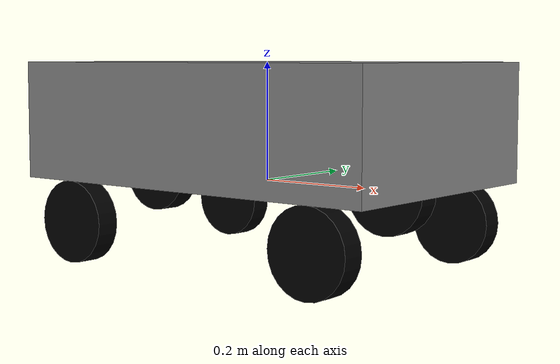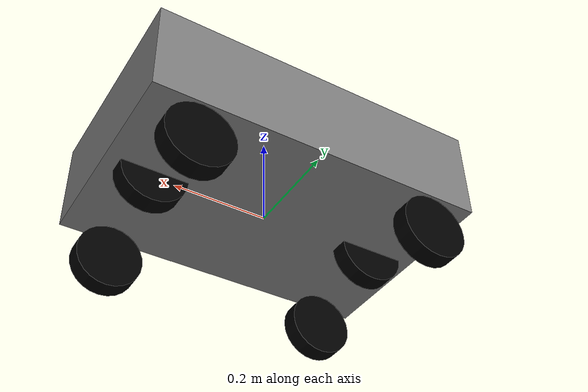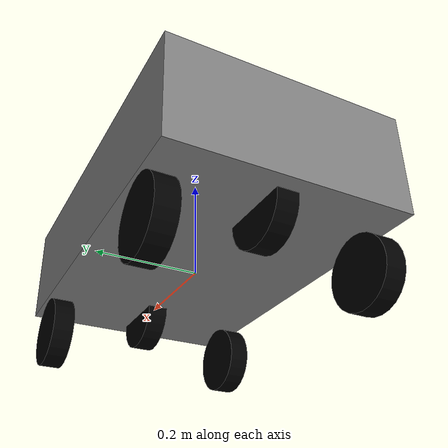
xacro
<?xml version="1.0"?>
<robot name="six_wheel_rover" xmlns:xacro="http://www.ros.org/wiki/xacro">

  <!-- ==================== GLOBAL PROPERTIES ===================== -->
  <xacro:property name="wheel_radius" value="0.07" />       <!-- 7 cm -->
  <xacro:property name="wheel_width"  value="0.04" />
  <xacro:property name="track_width"  value="0.40" />
  <xacro:property name="wheelbase"    value="0.50" />
  <xacro:property name="body_length"  value="0.70" />
  <xacro:property name="body_width"   value="0.45" />
  <xacro:property name="body_height"  value="0.20" />

  <!-- ==================== BASE LINK ===================== -->
  <link name="base_link">
    <visual>
      <geometry>
        <box size="${body_length} ${body_width} ${body_height}"/>
      </geometry>
      <origin xyz="0 0 ${body_height/2}" rpy="0 0 0"/>
      <material name="grey"><color rgba="0.5 0.5 0.5 1"/></material>
    </visual>
    <collision>
      <geometry>
        <box size="${body_length} ${body_width} ${body_height}"/>
      </geometry>
    </collision>
  </link>

  <!-- ==================== WHEELS ===================== -->
  <xacro:macro name="wheel" params="name x y">
    <link name="${name}_link">
      <visual>
        <geometry>
          <cylinder radius="${wheel_radius}" length="${wheel_width}"/>
        </geometry>
        <origin xyz="0 0 0" rpy="${pi/2} 0 0"/>
        <material name="black"><color rgba="0 0 0 1"/></material>
      </visual>
      <collision>
        <geometry>
          <cylinder radius="${wheel_radius}" length="${wheel_width}"/>
        </geometry>
      </collision>
    </link>

    <!-- Steering joint for front and rear wheels -->
    <joint name="${name}_steer_joint" type="revolute">
      <parent link="base_link"/>
      <child  link="${name}_steer_link"/>
      <origin xyz="${x} ${y} 0.0" rpy="0 0 0"/>
      <axis xyz="0 0 1"/>
      <limit lower="${-45*pi/180}" upper="${45*pi/180}" effort="30" velocity="1.0"/>
    </joint>

    <link name="${name}_steer_link"/>

    <!-- Wheel rotate joint -->
    <joint name="${name}_wheel_joint" type="continuous">
      <parent link="${name}_steer_link"/>
      <child link="${name}_link"/>
      <origin xyz="0 0 -${wheel_radius}" rpy="0 0 0"/>
      <axis xyz="0 1 0"/>
    </joint>
  </xacro:macro>

  <!-- Instantiate wheels -->
  <!-- Front wheels -->
  <xacro:wheel name="wheel_fl" x="${ wheelbase/2}" y="${ track_width/2}"/>
  <xacro:wheel name="wheel_fr" x="${ wheelbase/2}" y="${-track_width/2}"/>

  <!-- Middle wheels (no steering) -->
  <xacro:macro name="fixed_wheel" params="name x y">
    <link name="${name}_link">
      <visual>
        <geometry><cylinder radius="${wheel_radius}" length="${wheel_width}"/></geometry>
        <origin xyz="0 0 0" rpy="${pi/2} 0 0"/>
        <material name="black"><color rgba="0 0 0 1"/></material>
      </visual>
    </link>
    <joint name="${name}_joint" type="continuous">
      <origin xyz="${x} ${y} 0" rpy="0 0 0"/>
      <parent link="base_link"/>
      <child link="${name}_link"/>
      <axis xyz="0 1 0"/>
    </joint>
  </xacro:macro>

  <xacro:fixed_wheel name="wheel_fm" x="${ wheelbase/2}" y="0"/>
  <xacro:fixed_wheel name="wheel_rm" x="${-wheelbase/2}" y="0"/>

  <!-- Rear wheels -->
  <xacro:wheel name="wheel_rl" x="${-wheelbase/2}" y="${ track_width/2}"/>
  <xacro:wheel name="wheel_rr" x="${-wheelbase/2}" y="${-track_width/2}"/>

  <!-- ==================== SENSORS ===================== -->

  <!-- IMU -->
  <link name="imu_link"/>
  <joint name="imu_joint" type="fixed">
    <parent link="base_link"/>
    <child link="imu_link"/>
    <origin xyz="0 0 ${body_height/2}" rpy="0 0 0"/>
  </joint>

  <!-- GPS -->
  <link name="gps_link"/>
  <joint name="gps_joint" type="fixed">
    <parent link="base_link"/>
    <child link="gps_link"/>
    <origin xyz="0 0 ${body_height + 0.05}" rpy="0 0 0"/>
  </joint>

  <!-- Kinect -->
  <link name="camera_link"/>
  <joint name="camera_joint" type="fixed">
    <parent link="base_link"/>
    <child link="camera_link"/>
    <origin xyz="${body_length/2} 0 ${body_height}" rpy="0 0 0"/>
  </joint>

  <!-- ==================== ARM ===================== -->
  <link name="arm_base_link"/>
  <joint name="arm_base_joint" type="fixed">
    <parent link="base_link"/>
    <child link="arm_base_link"/>
    <origin xyz="0.0 0.20 ${body_height}" rpy="0 0 0"/>
  </joint>

  <!-- 5 arm joints -->
  <xacro:macro name="arm_joint" params="name parent child x y z axis_x axis_y axis_z">
    <joint name="${name}" type="revolute">
      <parent link="${parent}"/>
      <child  link="${child}"/>
      <origin xyz="${x} ${y} ${z}" rpy="0 0 0"/>
      <axis xyz="${axis_x} ${axis_y} ${axis_z}"/>
      <limit lower="-3.14" upper="3.14" effort="10" velocity="1"/>
    </joint>
  </xacro:macro>

  <link name="joint_1_link"/>
  <xacro:arm_joint name="joint_1" parent="arm_base_link" child="joint_1_link"
       x="0" y="0" z="0.05" axis_x="0" axis_y="0" axis_z="1"/>

  <link name="joint_2_link"/>
  <xacro:arm_joint name="joint_2" parent="joint_1_link" child="joint_2_link"
       x="0.1" y="0" z="0" axis_x="0" axis_y="1" axis_z="0"/>

  <link name="joint_3_link"/>
  <xacro:arm_joint name="joint_3" parent="joint_2_link" child="joint_3_link"
       x="0.1" y="0" z="0" axis_x="0" axis_y="1" axis_z="0"/>

  <link name="joint_4_link"/>
  <xacro:arm_joint name="joint_4" parent="joint_3_link" child="joint_4_link"
       x="0.1" y="0" z="0" axis_x="1" axis_y="0" axis_z="0"/>

  <link name="joint_5_link"/>
  <xacro:arm_joint name="joint_5" parent="joint_4_link" child="joint_5_link"
       x="0.1" y="0" z="0" axis_x="1" axis_y="0" axis_z="0"/>

  <link name="arm_tool_link"/>
  <joint name="tool_joint" type="fixed">
    <parent link="joint_5_link"/>
    <child  link="arm_tool_link"/>
    <origin xyz="0.05 0 0" rpy="0 0 0"/>
  </joint>

</robot>
